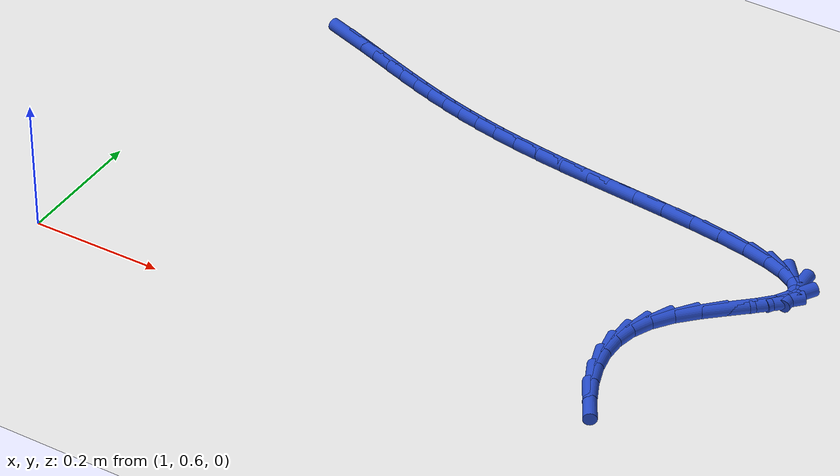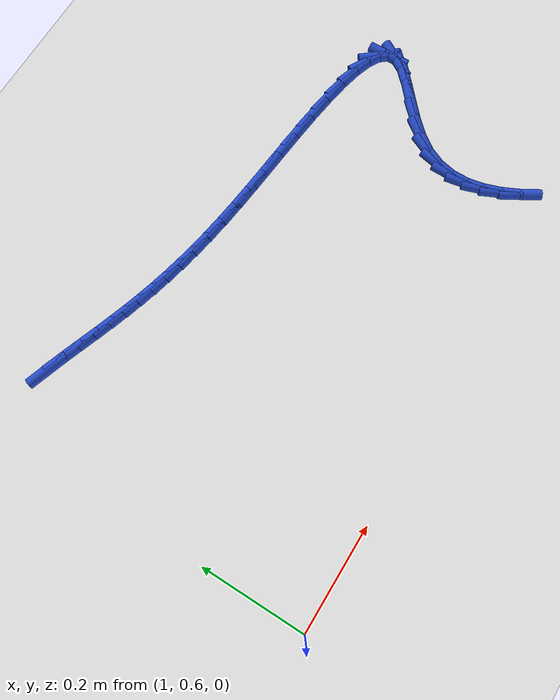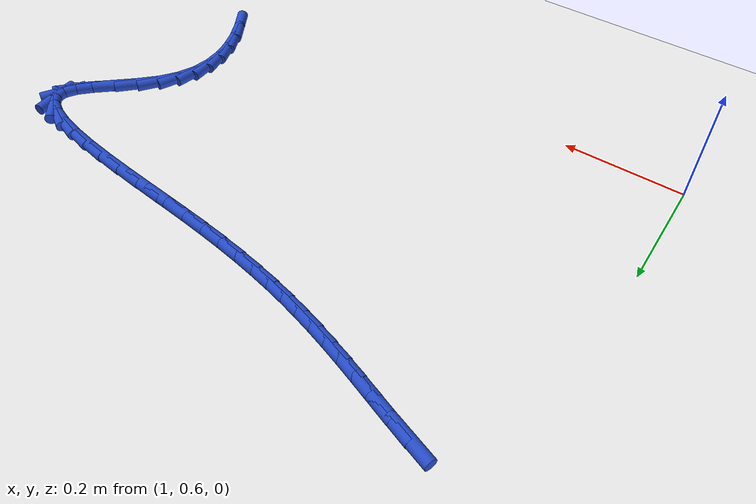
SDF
<sdf version="1.6">
 <world name="default">
  <model name="ground_plane">
   <static>1</static>
   <link name="link">
    <collision name="collision">
     <geometry><plane><normal>0 0 1</normal><size>100 100</size></plane></geometry>
     <surface><friction><ode><mu>100</mu><mu2>50</mu2></ode></friction></surface>
    </collision>
    <visual name="visual">
     <cast_shadows>0</cast_shadows>
     <geometry><plane><normal>0 0 1</normal><size>100 100</size></plane></geometry>
     <material>
      <script><uri>file://media/materials/scripts/gazebo.material</uri><name>Gazebo/WhiteGlow</name></script>
     </material>
    </visual>
   </link>
  </model>
  <model name="line">
   <link name="link_54">
    <pose>1.1337560777757665 1.207445702724462 0.01 0 1.57 -0.32713921677775787</pose>
    <collision name="collision">
     <geometry><cylinder><radius>0.01</radius><length>0.08</length></cylinder></geometry>
    </collision>
    <visual name="visual">
     <material>
      <script><name>Gazebo/Blue</name><uri>file://media/materials/scripts/gazebo.material</uri></script>
     </material>
     <geometry><cylinder><radius>0.01</radius><length>0.08</length></cylinder></geometry>
    </visual>
   </link>
   <link name="link_55">
    <pose>1.167574788819717 1.1959699464717002 0.01 0 1.57 -0.34354863885220566</pose>
    <collision name="collision">
     <geometry><cylinder><radius>0.01</radius><length>0.08</length></cylinder></geometry>
    </collision>
    <visual name="visual">
     <material>
      <script><name>Gazebo/Blue</name><uri>file://media/materials/scripts/gazebo.material</uri></script>
     </material>
     <geometry><cylinder><radius>0.01</radius><length>0.08</length></cylinder></geometry>
    </visual>
   </link>
   <link name="link_56">
    <pose>1.2007199604700678 1.1841127720034677 0.01 0 1.57 -0.3476658537428482</pose>
    <collision name="collision">
     <geometry><cylinder><radius>0.01</radius><length>0.08</length></cylinder></geometry>
    </collision>
    <visual name="visual">
     <material>
      <script><name>Gazebo/Blue</name><uri>file://media/materials/scripts/gazebo.material</uri></script>
     </material>
     <geometry><cylinder><radius>0.01</radius><length>0.08</length></cylinder></geometry>
    </visual>
   </link>
   <link name="link_57">
    <pose>1.2329977084562762 1.1724157815646574 0.01 0 1.57 -0.33922750574225047</pose>
    <collision name="collision">
     <geometry><cylinder><radius>0.01</radius><length>0.08</length></cylinder></geometry>
    </collision>
    <visual name="visual">
     <material>
      <script><name>Gazebo/Blue</name><uri>file://media/materials/scripts/gazebo.material</uri></script>
     </material>
     <geometry><cylinder><radius>0.01</radius><length>0.08</length></cylinder></geometry>
    </visual>
   </link>
   <link name="link_58">
    <pose>1.2642497009063478 1.1613879547736976 0.01 0 1.57 -0.32315328452218234</pose>
    <collision name="collision">
     <geometry><cylinder><radius>0.01</radius><length>0.08</length></cylinder></geometry>
    </collision>
    <visual name="visual">
     <material>
      <script><name>Gazebo/Blue</name><uri>file://media/materials/scripts/gazebo.material</uri></script>
     </material>
     <geometry><cylinder><radius>0.01</radius><length>0.08</length></cylinder></geometry>
    </visual>
   </link>
   <link name="link_59">
    <pose>1.2946948787774926 1.1511920884010292 0.01 0 1.57 -0.30313473608001484</pose>
    <collision name="collision">
     <geometry><cylinder><radius>0.01</radius><length>0.08</length></cylinder></geometry>
    </collision>
    <visual name="visual">
     <material>
      <script><name>Gazebo/Blue</name><uri>file://media/materials/scripts/gazebo.material</uri></script>
     </material>
     <geometry><cylinder><radius>0.01</radius><length>0.08</length></cylinder></geometry>
    </visual>
   </link>
   <link name="link_60">
    <pose>1.324779504033277 1.1417823910885698 0.01 0 1.57 -0.27986775367355027</pose>
    <collision name="collision">
     <geometry><cylinder><radius>0.01</radius><length>0.08</length></cylinder></geometry>
    </collision>
    <visual name="visual">
     <material>
      <script><name>Gazebo/Blue</name><uri>file://media/materials/scripts/gazebo.material</uri></script>
     </material>
     <geometry><cylinder><radius>0.01</radius><length>0.08</length></cylinder></geometry>
    </visual>
   </link>
   <link name="link_61">
    <pose>1.3549529662214812 1.1331102016293444 0.01 0 1.57 -0.25431632395397946</pose>
    <collision name="collision">
     <geometry><cylinder><radius>0.01</radius><length>0.08</length></cylinder></geometry>
    </collision>
    <visual name="visual">
     <material>
      <script><name>Gazebo/Blue</name><uri>file://media/materials/scripts/gazebo.material</uri></script>
     </material>
     <geometry><cylinder><radius>0.01</radius><length>0.08</length></cylinder></geometry>
    </visual>
   </link>
   <link name="link_62">
    <pose>1.3856646548898843 1.1251268588163785 0.01 0 1.57 -0.22763532488439442</pose>
    <collision name="collision">
     <geometry><cylinder><radius>0.01</radius><length>0.08</length></cylinder></geometry>
    </collision>
    <visual name="visual">
     <material>
      <script><name>Gazebo/Blue</name><uri>file://media/materials/scripts/gazebo.material</uri></script>
     </material>
     <geometry><cylinder><radius>0.01</radius><length>0.08</length></cylinder></geometry>
    </visual>
   </link>
   <link name="link_63">
    <pose>1.417363959586269 1.117783701442698 0.01 0 1.57 -0.20100190012955987</pose>
    <collision name="collision">
     <geometry><cylinder><radius>0.01</radius><length>0.08</length></cylinder></geometry>
    </collision>
    <visual name="visual">
     <material>
      <script><name>Gazebo/Blue</name><uri>file://media/materials/scripts/gazebo.material</uri></script>
     </material>
     <geometry><cylinder><radius>0.01</radius><length>0.08</length></cylinder></geometry>
    </visual>
   </link>
   <link name="link_64">
    <pose>1.4505002698584124 1.1110320683013268 0.01 0 1.57 -0.1754555313381318</pose>
    <collision name="collision">
     <geometry><cylinder><radius>0.01</radius><length>0.08</length></cylinder></geometry>
    </collision>
    <visual name="visual">
     <material>
      <script><name>Gazebo/Blue</name><uri>file://media/materials/scripts/gazebo.material</uri></script>
     </material>
     <geometry><cylinder><radius>0.01</radius><length>0.08</length></cylinder></geometry>
    </visual>
   </link>
   <link name="link_65">
    <pose>1.485522975254097 1.1048232981852917 0.01 0 1.57 -0.1517891369159384</pose>
    <collision name="collision">
     <geometry><cylinder><radius>0.01</radius><length>0.08</length></cylinder></geometry>
    </collision>
    <visual name="visual">
     <material>
      <script><name>Gazebo/Blue</name><uri>file://media/materials/scripts/gazebo.material</uri></script>
     </material>
     <geometry><cylinder><radius>0.01</radius><length>0.08</length></cylinder></geometry>
    </visual>
   </link>
   <link name="link_66">
    <pose>1.5228814653211022 1.0991087298876177 0.01 0 1.57 -0.13050823900713504</pose>
    <collision name="collision">
     <geometry><cylinder><radius>0.01</radius><length>0.08</length></cylinder></geometry>
    </collision>
    <visual name="visual">
     <material>
      <script><name>Gazebo/Blue</name><uri>file://media/materials/scripts/gazebo.material</uri></script>
     </material>
     <geometry><cylinder><radius>0.01</radius><length>0.08</length></cylinder></geometry>
    </visual>
   </link>
   <link name="link_67">
    <pose>1.5630251296072082 1.0938397022013298 0.01 0 1.57 -0.11186192257931665</pose>
    <collision name="collision">
     <geometry><cylinder><radius>0.01</radius><length>0.08</length></cylinder></geometry>
    </collision>
    <visual name="visual">
     <material>
      <script><name>Gazebo/Blue</name><uri>file://media/materials/scripts/gazebo.material</uri></script>
     </material>
     <geometry><cylinder><radius>0.01</radius><length>0.08</length></cylinder></geometry>
    </visual>
   </link>
   <link name="link_68">
    <pose>1.6064009562803203 1.0889672587549828 0.01 0 1.57 -0.09833792175328127</pose>
    <collision name="collision">
     <geometry><cylinder><radius>0.01</radius><length>0.08</length></cylinder></geometry>
    </collision>
    <visual name="visual">
     <material>
      <script><name>Gazebo/Blue</name><uri>file://media/materials/scripts/gazebo.material</uri></script>
     </material>
     <geometry><cylinder><radius>0.01</radius><length>0.08</length></cylinder></geometry>
    </visual>
   </link>
   <link name="link_69">
    <pose>1.652925868564802 1.0843772904954798 0.01 0 1.57 -0.09411084288754398</pose>
    <collision name="collision">
     <geometry><cylinder><radius>0.01</radius><length>0.08</length></cylinder></geometry>
    </collision>
    <visual name="visual">
     <material>
      <script><name>Gazebo/Blue</name><uri>file://media/materials/scripts/gazebo.material</uri></script>
     </material>
     <geometry><cylinder><radius>0.01</radius><length>0.08</length></cylinder></geometry>
    </visual>
   </link>
   <link name="link_70">
    <pose>1.7013236756732426 1.0798090373256772 0.01 0 1.57 -0.09853709206916762</pose>
    <collision name="collision">
     <geometry><cylinder><radius>0.01</radius><length>0.08</length></cylinder></geometry>
    </collision>
    <visual name="visual">
     <material>
      <script><name>Gazebo/Blue</name><uri>file://media/materials/scripts/gazebo.material</uri></script>
     </material>
     <geometry><cylinder><radius>0.01</radius><length>0.08</length></cylinder></geometry>
    </visual>
   </link>
   <link name="link_71">
    <pose>1.75015511558953 1.0749816953255387 0.01 0 1.57 -0.11175704303943458</pose>
    <collision name="collision">
     <geometry><cylinder><radius>0.01</radius><length>0.08</length></cylinder></geometry>
    </collision>
    <visual name="visual">
     <material>
      <script><name>Gazebo/Blue</name><uri>file://media/materials/scripts/gazebo.material</uri></script>
     </material>
     <geometry><cylinder><radius>0.01</radius><length>0.08</length></cylinder></geometry>
    </visual>
   </link>
   <link name="link_72">
    <pose>1.7979809262975561 1.0696144605750273 0.01 0 1.57 -0.13551958454028964</pose>
    <collision name="collision">
     <geometry><cylinder><radius>0.01</radius><length>0.08</length></cylinder></geometry>
    </collision>
    <visual name="visual">
     <material>
      <script><name>Gazebo/Blue</name><uri>file://media/materials/scripts/gazebo.material</uri></script>
     </material>
     <geometry><cylinder><radius>0.01</radius><length>0.08</length></cylinder></geometry>
    </visual>
   </link>
   <link name="link_73">
    <pose>1.8433618457812093 1.0634265291541072 0.01 0 1.57 -0.17388855542265794</pose>
    <collision name="collision">
     <geometry><cylinder><radius>0.01</radius><length>0.08</length></cylinder></geometry>
    </collision>
    <visual name="visual">
     <material>
      <script><name>Gazebo/Blue</name><uri>file://media/materials/scripts/gazebo.material</uri></script>
     </material>
     <geometry><cylinder><radius>0.01</radius><length>0.08</length></cylinder></geometry>
    </visual>
   </link>
   <link name="link_74">
    <pose>1.8848586120243795 1.0561370971427415 0.01 0 1.57 -0.23528703205506363</pose>
    <collision name="collision">
     <geometry><cylinder><radius>0.01</radius><length>0.08</length></cylinder></geometry>
    </collision>
    <visual name="visual">
     <material>
      <script><name>Gazebo/Blue</name><uri>file://media/materials/scripts/gazebo.material</uri></script>
     </material>
     <geometry><cylinder><radius>0.01</radius><length>0.08</length></cylinder></geometry>
    </visual>
   </link>
   <link name="link_75">
    <pose>1.921031963010957 1.0474653606208941 0.01 0 1.57 -0.33791949946959987</pose>
    <collision name="collision">
     <geometry><cylinder><radius>0.01</radius><length>0.08</length></cylinder></geometry>
    </collision>
    <visual name="visual">
     <material>
      <script><name>Gazebo/Blue</name><uri>file://media/materials/scripts/gazebo.material</uri></script>
     </material>
     <geometry><cylinder><radius>0.01</radius><length>0.08</length></cylinder></geometry>
    </visual>
   </link>
   <link name="link_76">
    <pose>1.9504426367248309 1.0371305156685284 0.01 0 1.57 -0.5247963479720211</pose>
    <collision name="collision">
     <geometry><cylinder><radius>0.01</radius><length>0.08</length></cylinder></geometry>
    </collision>
    <visual name="visual">
     <material>
      <script><name>Gazebo/Blue</name><uri>file://media/materials/scripts/gazebo.material</uri></script>
     </material>
     <geometry><cylinder><radius>0.01</radius><length>0.08</length></cylinder></geometry>
    </visual>
   </link>
   <link name="link_77">
    <pose>1.9716513711498922 1.024851758365609 0.01 0 1.57 -0.8975389460871354</pose>
    <collision name="collision">
     <geometry><cylinder><radius>0.01</radius><length>0.08</length></cylinder></geometry>
    </collision>
    <visual name="visual">
     <material>
      <script><name>Gazebo/Blue</name><uri>file://media/materials/scripts/gazebo.material</uri></script>
     </material>
     <geometry><cylinder><radius>0.01</radius><length>0.08</length></cylinder></geometry>
    </visual>
   </link>
   <link name="link_78">
    <pose>1.9832189042700286 1.0103482847920975 0.01 0 1.57 -1.5421681354130943</pose>
    <collision name="collision">
     <geometry><cylinder><radius>0.01</radius><length>0.08</length></cylinder></geometry>
    </collision>
    <visual name="visual">
     <material>
      <script><name>Gazebo/Blue</name><uri>file://media/materials/scripts/gazebo.material</uri></script>
     </material>
     <geometry><cylinder><radius>0.01</radius><length>0.08</length></cylinder></geometry>
    </visual>
   </link>
   <link name="link_79">
    <pose>1.983705974069132 0.9933392910279593 0.01 0 1.57 1.036733792310136</pose>
    <collision name="collision">
     <geometry><cylinder><radius>0.01</radius><length>0.08</length></cylinder></geometry>
    </collision>
    <visual name="visual">
     <material>
      <script><name>Gazebo/Blue</name><uri>file://media/materials/scripts/gazebo.material</uri></script>
     </material>
     <geometry><cylinder><radius>0.01</radius><length>0.08</length></cylinder></geometry>
    </visual>
   </link>
   <link name="link_80">
    <pose>1.972024787380126 0.9735871126189519 0.01 0 1.57 0.8015503148508597</pose>
    <collision name="collision">
     <geometry><cylinder><radius>0.01</radius><length>0.08</length></cylinder></geometry>
    </collision>
    <visual name="visual">
     <material>
      <script><name>Gazebo/Blue</name><uri>file://media/materials/scripts/gazebo.material</uri></script>
     </material>
     <geometry><cylinder><radius>0.01</radius><length>0.08</length></cylinder></geometry>
    </visual>
   </link>
   <link name="link_81">
    <pose>1.950409270121253 0.9512617946055867 0.01 0 1.57 0.7280766279803434</pose>
    <collision name="collision">
     <geometry><cylinder><radius>0.01</radius><length>0.08</length></cylinder></geometry>
    </collision>
    <visual name="visual">
     <material>
      <script><name>Gazebo/Blue</name><uri>file://media/materials/scripts/gazebo.material</uri></script>
     </material>
     <geometry><cylinder><radius>0.01</radius><length>0.08</length></cylinder></geometry>
    </visual>
   </link>
   <link name="link_82">
    <pose>1.9229217804021126 0.9267578047281213 0.01 0 1.57 0.7315981496491821</pose>
    <collision name="collision">
     <geometry><cylinder><radius>0.01</radius><length>0.08</length></cylinder></geometry>
    </collision>
    <visual name="visual">
     <material>
      <script><name>Gazebo/Blue</name><uri>file://media/materials/scripts/gazebo.material</uri></script>
     </material>
     <geometry><cylinder><radius>0.01</radius><length>0.08</length></cylinder></geometry>
    </visual>
   </link>
   <link name="link_83">
    <pose>1.8936436916379966 0.9004719446751321 0.01 0 1.57 0.79790457537912</pose>
    <collision name="collision">
     <geometry><cylinder><radius>0.01</radius><length>0.08</length></cylinder></geometry>
    </collision>
    <visual name="visual">
     <material>
      <script><name>Gazebo/Blue</name><uri>file://media/materials/scripts/gazebo.material</uri></script>
     </material>
     <geometry><cylinder><radius>0.01</radius><length>0.08</length></cylinder></geometry>
    </visual>
   </link>
   <link name="link_84">
    <pose>1.8666563772441975 0.8728010161351973 0.01 0 1.57 0.9437957365544334</pose>
    <collision name="collision">
     <geometry><cylinder><radius>0.01</radius><length>0.08</length></cylinder></geometry>
    </collision>
    <visual name="visual">
     <material>
      <script><name>Gazebo/Blue</name><uri>file://media/materials/scripts/gazebo.material</uri></script>
     </material>
     <geometry><cylinder><radius>0.01</radius><length>0.08</length></cylinder></geometry>
    </visual>
   </link>
   <link name="link_85">
    <pose>1.8458844515930222 0.8441315308642866 0.01 0 1.57 1.1508885292522815</pose>
    <collision name="collision">
     <geometry><cylinder><radius>0.01</radius><length>0.08</length></cylinder></geometry>
    </collision>
    <visual name="visual">
     <material>
      <script><name>Gazebo/Blue</name><uri>file://media/materials/scripts/gazebo.material</uri></script>
     </material>
     <geometry><cylinder><radius>0.01</radius><length>0.08</length></cylinder></geometry>
    </visual>
   </link>
   <link name="link_86">
    <pose>1.832737660106028 0.8146849203045082 0.01 0 1.57 1.3698549419162098</pose>
    <collision name="collision">
     <geometry><cylinder><radius>0.01</radius><length>0.08</length></cylinder></geometry>
    </collision>
    <visual name="visual">
     <material>
      <script><name>Gazebo/Blue</name><uri>file://media/materials/scripts/gazebo.material</uri></script>
     </material>
     <geometry><cylinder><radius>0.01</radius><length>0.08</length></cylinder></geometry>
    </visual>
   </link>
   <link name="link_87">
    <pose>1.826599388398795 0.7845496021627316 0.01 0 1.57 -1.564419989657227</pose>
    <collision name="collision">
     <geometry><cylinder><radius>0.01</radius><length>0.08</length></cylinder></geometry>
    </collision>
    <visual name="visual">
     <material>
      <script><name>Gazebo/Blue</name><uri>file://media/materials/scripts/gazebo.material</uri></script>
     </material>
     <geometry><cylinder><radius>0.01</radius><length>0.08</length></cylinder></geometry>
    </visual>
   </link>
   <link name="link_88">
    <pose>1.826795395773758 0.7538102114557363 0.01 0 1.57 -1.385602425796157</pose>
    <collision name="collision">
     <geometry><cylinder><radius>0.01</radius><length>0.08</length></cylinder></geometry>
    </collision>
    <visual name="visual">
     <material>
      <script><name>Gazebo/Blue</name><uri>file://media/materials/scripts/gazebo.material</uri></script>
     </material>
     <geometry><cylinder><radius>0.01</radius><length>0.08</length></cylinder></geometry>
    </visual>
   </link>
   <link name="link_89">
    <pose>1.8326514415333535 0.7225513832003012 0.01 0 1.57 -1.2411921001665407</pose>
    <collision name="collision">
     <geometry><cylinder><radius>0.01</radius><length>0.08</length></cylinder></geometry>
    </collision>
    <visual name="visual">
     <material>
      <script><name>Gazebo/Blue</name><uri>file://media/materials/scripts/gazebo.material</uri></script>
     </material>
     <geometry><cylinder><radius>0.01</radius><length>0.08</length></cylinder></geometry>
    </visual>
   </link>
   <link name="link_90">
    <pose>1.8434932849800165 0.6908577524132057 0.01 0 1.57 -1.129065646686271</pose>
    <collision name="collision">
     <geometry><cylinder><radius>0.01</radius><length>0.08</length></cylinder></geometry>
    </collision>
    <visual name="visual">
     <material>
      <script><name>Gazebo/Blue</name><uri>file://media/materials/scripts/gazebo.material</uri></script>
     </material>
     <geometry><cylinder><radius>0.01</radius><length>0.08</length></cylinder></geometry>
    </visual>
   </link>
   <link name="link_91">
    <pose>1.8586466854161827 0.6588139541112281 0.01 0 1.57 -1.0440251396247462</pose>
    <collision name="collision">
     <geometry><cylinder><radius>0.01</radius><length>0.08</length></cylinder></geometry>
    </collision>
    <visual name="visual">
     <material>
      <script><name>Gazebo/Blue</name><uri>file://media/materials/scripts/gazebo.material</uri></script>
     </material>
     <geometry><cylinder><radius>0.01</radius><length>0.08</length></cylinder></geometry>
    </visual>
   </link>
  </model>
 </world>
</sdf>
